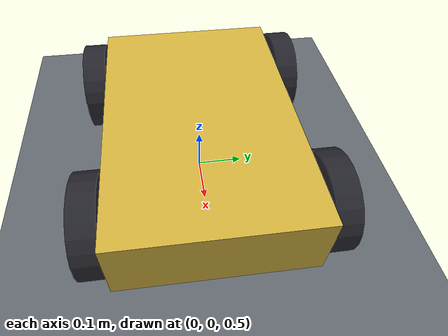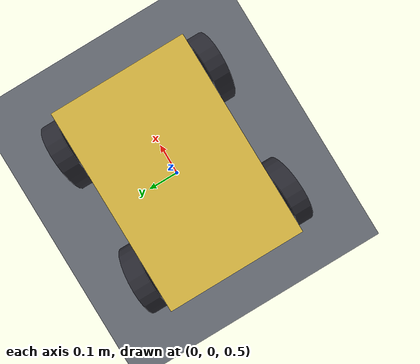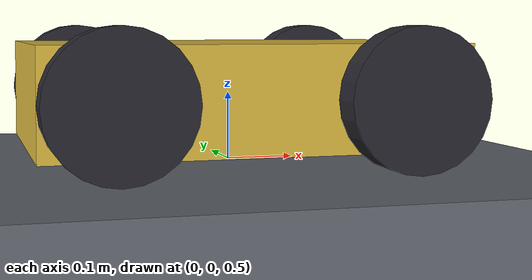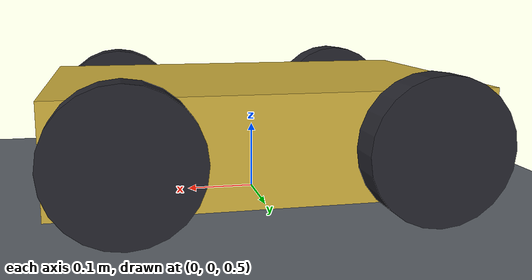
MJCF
<mujoco model="ladder0_rung11_mujoco">

  <!-- Only gravity and the timestep are set from the contract.  Everything
       else is MuJoCo's default, on purpose: this arm is the un-tuned
       reference for the solver OmniSim runs underneath. -->
  <option timestep="0.004" gravity="0 0 -9.81"/>

  <default>
    <!-- sliding / torsional / rolling.  condim defaults to 3, so only the
         first component is in force; the rest are declared for the record. -->
    <geom friction="1.0 0.005 0.0001"/>
  </default>

  <worldbody>
    <!-- Floor slab: full extents 25.200000000000003 x 3.0 x 0.2 m centred at z=0.4,
         so its top surface is at z=0.5.  Deliberately NOT at z=0. -->
    <geom name="floor" type="box" size="12.600000000000001 1.5 0.1" pos="0 0 0.4"
          rgba="0.4 0.42 0.45 1"/>

    <!-- r00: lane y = +0.000 m, commanded 2.0 rad/s -->
    <body name="r00_chassis" pos="0 0.0 0.6">
      <freejoint name="r00_chassis_free"/>
      <geom name="r00_chassis_geom" type="box" size="0.3 0.2 0.075"
            mass="5.0" rgba="0.85 0.72 0.25 1"/>

      <body name="r00_fl" pos="0.2 0.225 0">
        <joint name="r00_fl_joint" type="hinge" axis="0 1 0"/>
        <geom name="r00_fl_geom" type="cylinder"
              fromto="0 -0.025 0  0 0.025 0" size="0.1" mass="0.5"
              rgba="0.15 0.15 0.18 1"/>
      </body>

      <body name="r00_fr" pos="0.2 -0.225 0">
        <joint name="r00_fr_joint" type="hinge" axis="0 1 0"/>
        <geom name="r00_fr_geom" type="cylinder"
              fromto="0 -0.025 0  0 0.025 0" size="0.1" mass="0.5"
              rgba="0.15 0.15 0.18 1"/>
      </body>

      <body name="r00_rl" pos="-0.2 0.225 0">
        <joint name="r00_rl_joint" type="hinge" axis="0 1 0"/>
        <geom name="r00_rl_geom" type="cylinder"
              fromto="0 -0.025 0  0 0.025 0" size="0.1" mass="0.5"
              rgba="0.15 0.15 0.18 1"/>
      </body>

      <body name="r00_rr" pos="-0.2 -0.225 0">
        <joint name="r00_rr_joint" type="hinge" axis="0 1 0"/>
        <geom name="r00_rr_geom" type="cylinder"
              fromto="0 -0.025 0  0 0.025 0" size="0.1" mass="0.5"
              rgba="0.15 0.15 0.18 1"/>
      </body>
    </body>
  </worldbody>

  <actuator>
    <!-- Deadbeat velocity servo: kv = I/dt = 0.625000, half the
         explicit-Euler stability bound 2I/dt, for a wheel's
         own I = m r^2 / 2 = 0.002500 kg m^2. -->
    <velocity name="r00_fl_motor" joint="r00_fl_joint" kv="0.625000"/>
    <velocity name="r00_fr_motor" joint="r00_fr_joint" kv="0.625000"/>
    <velocity name="r00_rl_motor" joint="r00_rl_joint" kv="0.625000"/>
    <velocity name="r00_rr_motor" joint="r00_rr_joint" kv="0.625000"/>
  </actuator>

</mujoco>
